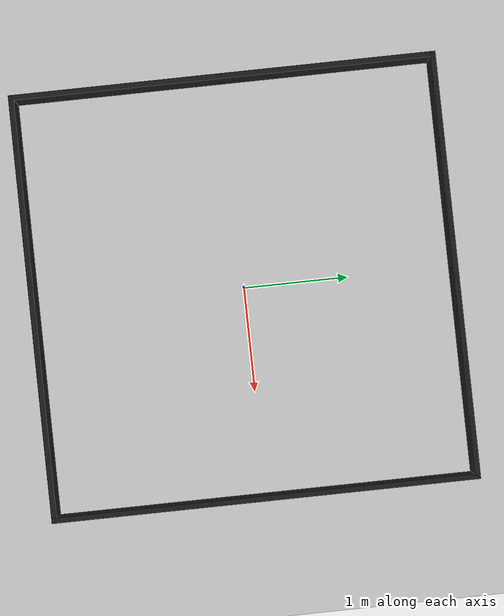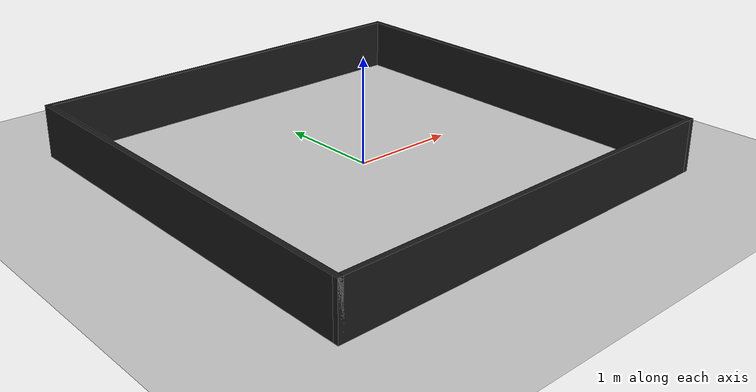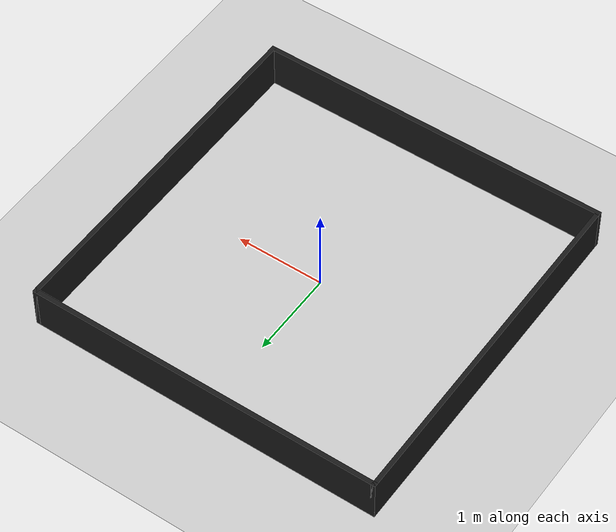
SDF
<?xml version="1.0"?>

<sdf version="1.6">
    <world name="depot">
        <scene>
            <grid>false</grid>
        </scene>
        <physics name="1ms" type="ignored">
            <max_step_size>0.003</max_step_size>
            <real_time_factor>1.0</real_time_factor>
        </physics>
        <plugin filename="ignition-gazebo-physics-system" name="ignition::gazebo::systems::Physics"></plugin>
        <plugin filename="ignition-gazebo-user-commands-system" name="ignition::gazebo::systems::UserCommands"></plugin>
        <plugin filename="ignition-gazebo-scene-broadcaster-system" name="ignition::gazebo::systems::SceneBroadcaster"></plugin>

        <light name='sun' type='directional'>
            <cast_shadows>1</cast_shadows>
            <pose>0 0 10 0 -0 0</pose>
            <diffuse>0.8 0.8 0.8 1</diffuse>
            <specular>0.2 0.2 0.2 1</specular>
            <attenuation>
                <range>1000</range>
                <constant>0.90000000000000002</constant>
                <linear>0.01</linear>
                <quadratic>0.001</quadratic>
            </attenuation>
            <direction>-0.5 0.1 -0.9</direction>
            <spot>
                <inner_angle>0</inner_angle>
                <outer_angle>0</outer_angle>
                <falloff>0</falloff>
            </spot>
        </light>

        <gravity>0 0 -9.8</gravity>
        <magnetic_field>6e-06 2.3e-05 -4.2e-05</magnetic_field>
        <atmosphere type='adiabatic' />
        <scene>
            <ambient>0.4 0.4 0.4 1</ambient>
            <background>0.9 0.9 0.9 1</background>
            <shadows>1</shadows>
        </scene>

        <model name='ground_plane'>
            <static>1</static>
            <link name='link'>
                <collision name='collision'>
                    <geometry>
                        <plane>
                            <normal>0 0 1</normal>
                            <size>100 100</size>
                        </plane>
                    </geometry>
                    <surface>
                        <friction>
                            <ode />
                        </friction>
                        <bounce />
                        <contact />
                    </surface>
                </collision>
                <visual name='visual'>
                    <geometry>
                        <plane>
                            <normal>0 0 1</normal>
                            <size>100 100</size>
                        </plane>
                    </geometry>
                    <plugin name='__default__' filename='__default__' />
                </visual>
            </link>
            <plugin name='__default__' filename='__default__' />
            <pose>0 0 0 0 -0 0</pose>
        </model>

        <model name='Arena'>
            <pose>0 0 0 0 -0 0</pose>
            <link name='Wall_13'>
            <collision name='Wall_13_Collision'>
                <geometry>
                <box>
                    <size>4.05 0.05 0.5</size>
                </box>
                </geometry>
                <pose>0 0 0.25 0 -0 0</pose>
            </collision>
            <visual name='Wall_13_Visual'>
                <pose>0 0 0.25 0 -0 0</pose>
                <geometry>
                <box>
                    <size>4.05 0.05 0.5</size>
                </box>
                </geometry>
                <material>
                    <ambient>0.1 0.1 0.1 1</ambient>
                    <diffuse>0.1 0.1 0.1 1</diffuse>
                    <specular>0.01 0.01 0.01 1</specular>
                </material>
                <meta>
                <layer>0</layer>
                </meta>
            </visual>
            <pose>-2 0 0 0 -0 1.5708</pose>
            </link>
            <link name='Wall_15'>
            <collision name='Wall_15_Collision'>
                <geometry>
                <box>
                    <size>4.05 0.05 0.5</size>
                </box>
                </geometry>
                <pose>0 0 0.25 0 -0 0</pose>
            </collision>
            <visual name='Wall_15_Visual'>
                <pose>0 0 0.25 0 -0 0</pose>
                <geometry>
                <box>
                    <size>4.05 0.05 0.5</size>
                </box>
                </geometry>
                <material>
                   <ambient>0.1 0.1 0.1 1</ambient>
                    <diffuse>0.1 0.1 0.1 1</diffuse>
                    <specular>0.01 0.01 0.01 1</specular>
                </material>
                <meta>
                <layer>0</layer>
                </meta>
            </visual>
            <pose>2 0 0 0 -0 1.5708</pose>
            </link>
            <link name='Wall_17'>
            <collision name='Wall_17_Collision'>
                <geometry>
                <box>
                    <size>4.05 0.05 0.5</size>
                </box>
                </geometry>
                <pose>0 0 0.25 0 -0 0</pose>
            </collision>
            <visual name='Wall_17_Visual'>
                <pose>0 0 0.25 0 -0 0</pose>
                <geometry>
                <box>
                    <size>4.05 0.05 0.5</size>
                </box>
                </geometry>
                <material>
                    <ambient>0.1 0.1 0.1 1</ambient>
                    <diffuse>0.1 0.1 0.1 1</diffuse>
                    <specular>0.01 0.01 0.01 1</specular>
                </material>
                <meta>
                <layer>0</layer>
                </meta>
            </visual>
            <pose>0 -2 0 0 -0 0</pose>
            </link>
            <link name='Wall_7'>
            <collision name='Wall_7_Collision'>
                <geometry>
                <box>
                    <size>4.05 0.05 0.5</size>
                </box>
                </geometry>
                <pose>0 0 0.25 0 -0 0</pose>
            </collision>
            <visual name='Wall_7_Visual'>
                <pose>0 0 0.25 0 -0 0</pose>
                <geometry>
                <box>
                    <size>4.05 0.05 0.5</size>
                </box>
                </geometry>
                <material>
                    <ambient>0.1 0.1 0.1 1</ambient>
                    <diffuse>0.1 0.1 0.1 1</diffuse>
                    <specular>0.01 0.01 0.01 1</specular>
                </material>
                <meta>
                <layer>0</layer>
                </meta>
            </visual>
            <pose>0 2 0 0 -0 0</pose>
            </link>
            <static>1</static>
        </model>

    </world>
</sdf>
